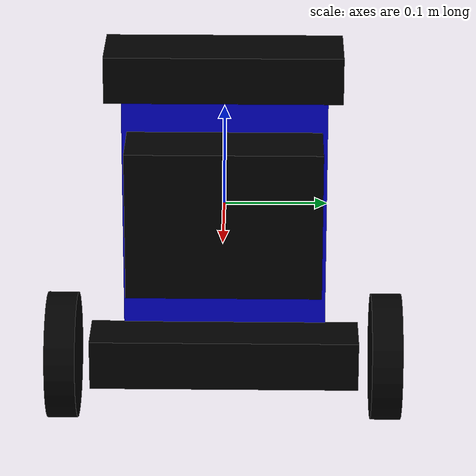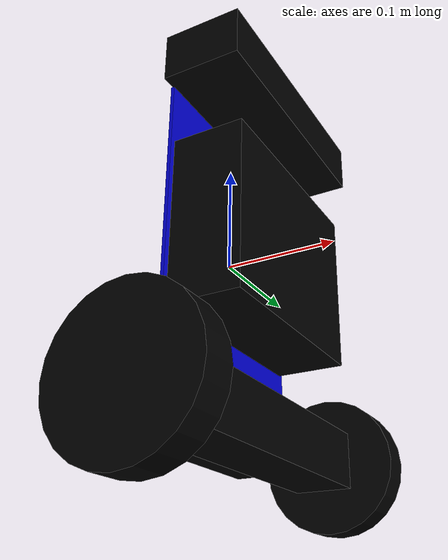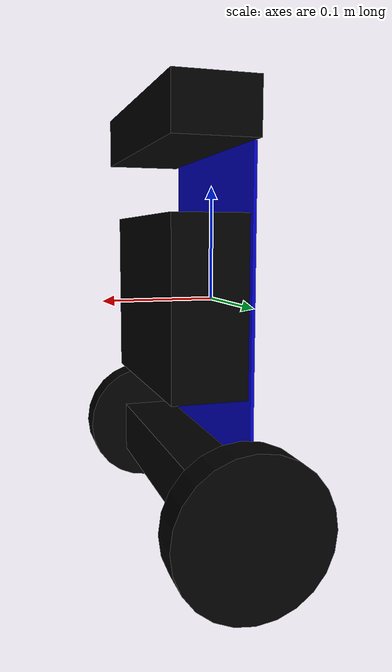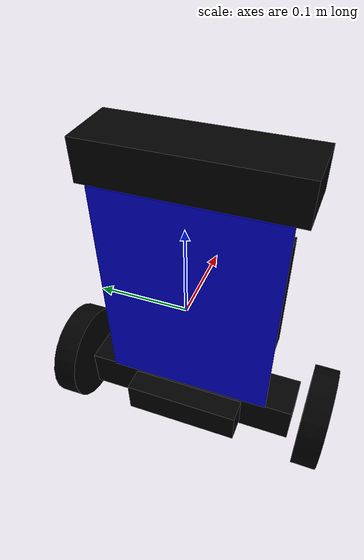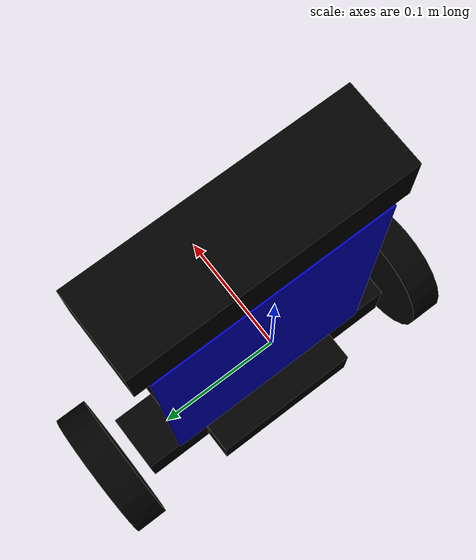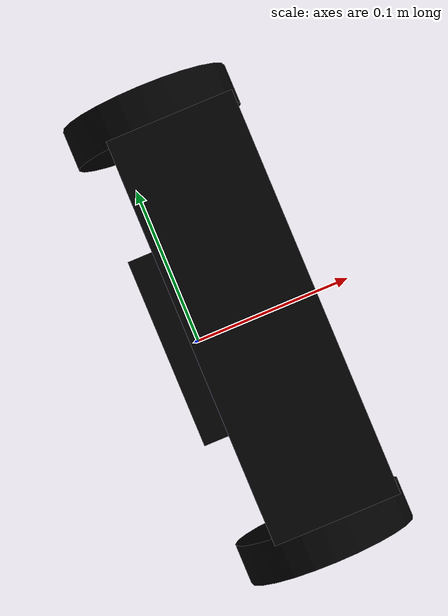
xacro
<?xml version="1.0"?>
<robot name="segway" xmlns:xacro="http://ros.org/wiki/xacro">

  <!-- SIZE BODY -->
  <xacro:property name="width_body" value="0.200" />
  <xacro:property name="height_body" value="0.255" />
  <xacro:property name="depth_body" value="0.003" />

  <!-- SIZE BOTTOM -->
  <xacro:property name="width_bottom" value="0.265" />
  <xacro:property name="height_bottom" value="0.050" />
  <xacro:property name="depth_bottom" value="0.053" />
  <xacro:property name="space_btwn_w_b" value="0.012" />

  <!-- SIZE TOP -->
  <xacro:property name="width_top" value="0.225" />
  <xacro:property name="height_top" value="0.045" />
  <xacro:property name="depth_top" value="0.070" />

  <!-- SIZE BOX -->
  <xacro:property name="width_box" value="0.190" />
  <xacro:property name="height_box" value="0.148" />
  <xacro:property name="depth_box" value="0.065" />

  <!-- SIZE WHEEL -->
  <xacro:property name="diam_wheel" value="0.125" />
  <xacro:property name="len_wheel" value="0.03" />

  <xacro:property name="pi" value="3.1415" />

  <!-- Import all Gazebo-customization elements -->
  <xacro:include filename="$(find quimesis_segway_description)/urdf/segway.gazebo" />

  <material name="blue">
    <color rgba="0 0 0.8 1"/>
  </material>

  <material name="black">
    <color rgba="0 0 0 1"/>
  </material>

  <material name="white">
    <color rgba="1 1 1 1"/>
  </material>

  <!-- INERTIAL -->
  <xacro:macro name="default_inertial" params="mass">
    <inertial>
      <mass value="${mass}" />
      <inertia ixx="1.0" ixy="0.0" ixz="0.0" iyy="1.0" iyz="0.0" izz="1.0" />
    </inertial>
  </xacro:macro>

  <xacro:macro name="cylinder_inertial_with_origin" params="radius length mass *origin">
     <inertial>
       <mass value="${mass}" />
       <xacro:insert_block name="origin" />
       <inertia ixx="${0.0833333 * mass * (3 * radius * radius + length * length)}" ixy="0.0" ixz="0.0"
         iyy="${0.0833333 * mass * (3 * radius * radius + length * length)}" iyz="0.0"
         izz="${0.5 * mass * radius * radius}" />
     </inertial>
  </xacro:macro>

  <xacro:macro name="inertial_with_origin" params="radius length mass izz *origin">
     <inertial>
       <mass value="${mass}" />
       <xacro:insert_block name="origin" />
       <inertia ixx="${0.0833333 * mass * (3 * radius * radius + length * length)}" ixy="0.0" ixz="0.0"
         iyy="${0.0833333 * mass * (3 * radius * radius + length * length)}" iyz="0.0"
         izz="${izz}" />
     </inertial>
  </xacro:macro>

  <xacro:macro name="box_inertial_with_origin" params="x y z mass *origin">
    <inertial>
      <mass value="${mass}" />
      <xacro:insert_block name="origin" />
      <inertia ixx="${0.0833333 * mass * (y*y + z*z)}" ixy="0.0" ixz="0.0"
        iyy="${0.0833333 * mass * (x*x + z*z)}" iyz="0.0"
        izz="${0.0833333 * mass * (x*x + y*y)}" />
    </inertial>
  </xacro:macro>

  <!-- ROBOT -->
  <link name="base_link">
    <gazebo>
      <static>true</static>
    </gazebo>
    <visual>
      <origin xyz="0 0 0" rpy="0 0 0"/>
      <geometry>
        <box size="${depth_body} ${width_body} ${height_body}"/>
      </geometry>
      <material name="blue"/>
    </visual>
    <collision>
      <origin xyz="0 0 0" rpy="0 0 0"/>
      <geometry>
        <box size="${depth_body} ${width_body} ${height_body} "/>
      </geometry>
    </collision>
    <xacro:box_inertial_with_origin x="${depth_body}" y="${width_body}" z="${height_body}" mass="0.200" >
      <origin xyz="0 0 0" rpy="0 0 0" />
    </xacro:box_inertial_with_origin >
  </link>

  <!-- Macro for the box, bottom, top and the battery -->
  <xacro:macro name="container" params="prefix depth width height offset_x offset_y offset_z mass">
    <link name="${prefix}_container">
      <visual>
        <origin xyz="0 0 0" rpy="0 0 0" />
        <geometry>
          <box size="${depth} ${width} ${height}"/>
        </geometry>
        <material name="black"/>
      </visual>
      <collision>
        <origin xyz="0 0 0" rpy="0 0 0" />
        <geometry>
          <box size="${depth} ${width} ${height}"/>
        </geometry>
      </collision>

      <xacro:box_inertial_with_origin x="${depth}" y="${width}" z="${height}" mass="${mass}" >
        <origin xyz="0 0 0" rpy="0 0 0"/>

      </xacro:box_inertial_with_origin >

    </link>

    <joint name="${prefix}_container_joint" type="fixed">
      <parent link="base_link"/>
      <child link="${prefix}_container"/>
      <origin xyz="${offset_x} ${offset_y} ${offset_z}" rpy="0 0 0"/>
    </joint>

  </xacro:macro>

  <!-- BOTTOM -->
  <xacro:container prefix="bottom" depth="${depth_bottom}" width="${width_bottom}" height="${height_bottom}"
      offset_x="${depth_bottom/2}" offset_y="0" offset_z="${-(height_body/2+ height_bottom/2)}"
      mass="1.420" />
  <!-- TOP -->
  <xacro:container prefix="top" depth="${depth_top}" width="${width_top}" height="${height_top}"
    offset_x="${depth_top/2}" offset_y="0" offset_z="${height_body/2 + height_top/2}"
    mass="0.350" />
  <!-- BOX -->
  <xacro:container prefix="box" depth="${depth_box}" width="${width_box}" height="${height_box}"
     offset_x="${depth_box/2}" offset_y="0" offset_z="0"
     mass="1.059" />

   <!-- JointEffortControllerBATTERY -->
   <xacro:container prefix="battery" depth="0.03" width="0.14" height="0.04"
      offset_x="${-depth_bottom/4}" offset_y="0" offset_z="${-(height_body/2+ height_bottom/2)}"
      mass="0.400" />

  <!-- Wheel MACRO -->
  <xacro:macro name="wheel" params="prefix reflect">
    <link name="${prefix}_wheel">
      <visual>
        <origin xyz="0 0 0" rpy="${pi/2} 0 0" />
        <geometry>
          <cylinder radius="${diam_wheel/2}" length="${len_wheel}"/>
        </geometry>
        <material name="black"/>
      </visual>
      <collision>
        <origin xyz="0 0 0" rpy="${pi/2} 0 0" />
        <geometry>
          <cylinder radius="${diam_wheel/2}" length="${len_wheel}"/>
        </geometry>
      </collision>
      <xacro:inertial_with_origin radius="${diam_wheel/2}" length="${len_wheel}" mass="0.188" izz="0.0006" >
        <origin xyz="0 0 0" rpy="${pi/2} 0 0" />
      </xacro:inertial_with_origin >
    </link>
    <!-- friction -->

    <gazebo reference="${prefix}_wheel">
      <mu1 value="1e+16"/>
      <mu2 value="1e+16"/>
      <kp  value="100000000.0" />
      <kd  value="1.0" />
      <fdir1 value="1 0 0"/>
    </gazebo>

    <joint name="${prefix}_wheel_joint" type="continuous">
      <axis xyz="0 1 0" rpy="0 1 0" />
      <parent link="bottom_container"/>
      <child link="${prefix}_wheel"/>
      <origin xyz="0 ${reflect*(width_bottom/2 + len_wheel/2 + space_btwn_w_b)} 0" rpy="0 0 0"/>
      <limit effort="0.3" velocity="12.7"/> <!-- velocity: rad/s -->
    </joint>
    <!-- This block connects the wheel joint to an actuator (motor), which informs both
      simulation and visualization of the robot -->
    <transmission name="${prefix}_trans">
      <type>transmission_interface/SimpleTransmission</type>
      <joint name="${prefix}_wheel_joint">
        <hardwareInterface>EffortJointInterface</hardwareInterface>

      </joint>
      <actuator name="${prefix}_wheel_motor">
        <hardwareInterface>EffortJointInterface</hardwareInterface>
      </actuator>
    </transmission>
  </xacro:macro>

  <!-- WHEELs -->
  <xacro:wheel prefix="left" reflect="-1" />
  <xacro:wheel prefix="right" reflect="1" />

  </robot>
